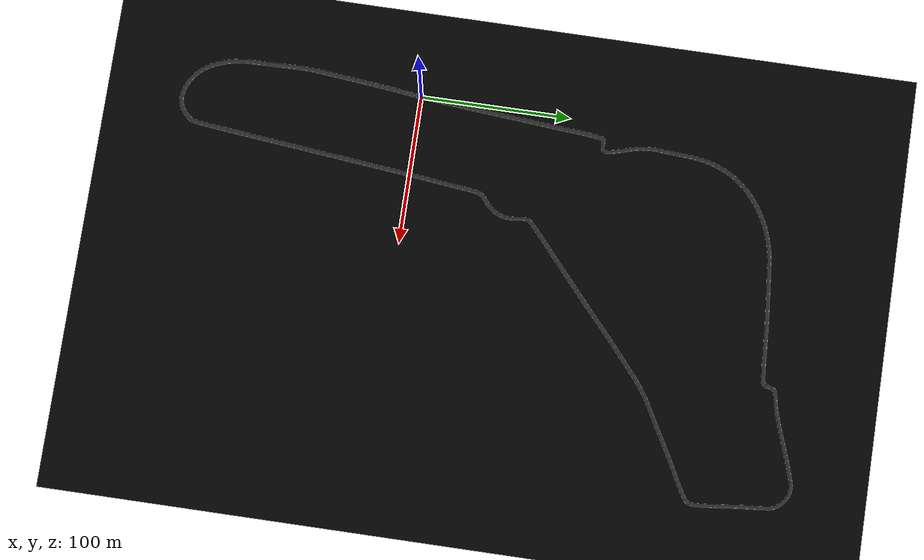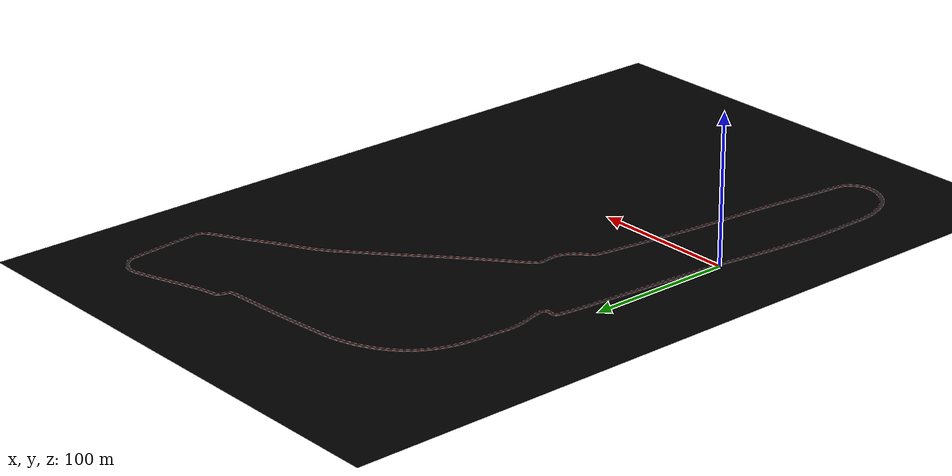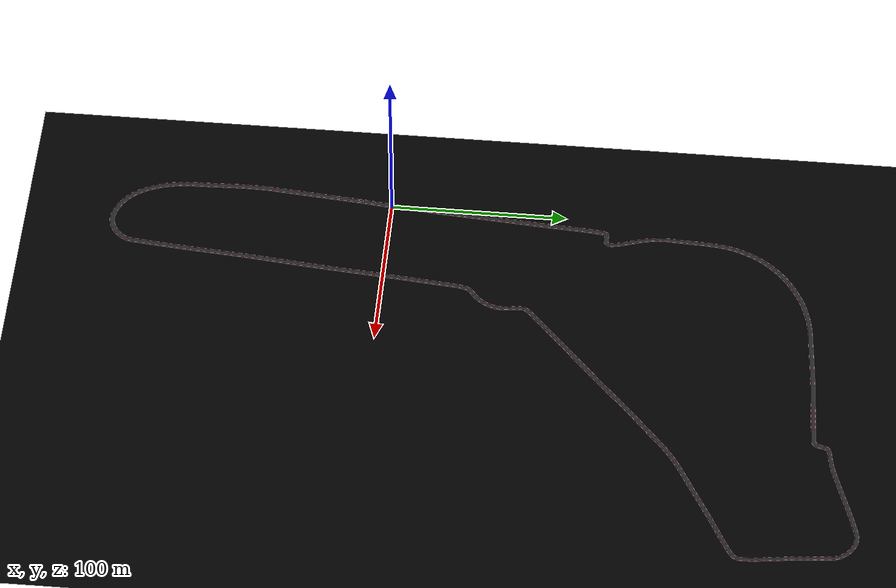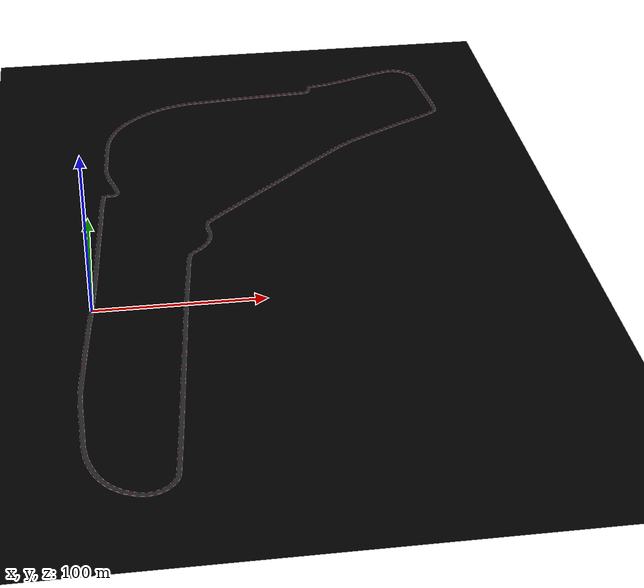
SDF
<?xml version='1.0' encoding='utf-8'?>
<sdf version="1.9">
  <world name="monza">
    <gravity>0 0 -9.81</gravity>
    <physics name="physics" type="ignored">
      <max_step_size>.001</max_step_size>
      <real_time_factor>1.0</real_time_factor>
    </physics>
    <plugin filename="gz-sim-physics-system" name="gz::sim::systems::Physics" />
    <plugin filename="gz-sim-user-commands-system" name="gz::sim::systems::UserCommands" />
    <plugin filename="gz-sim-scene-broadcaster-system" name="gz::sim::systems::SceneBroadcaster" />
    <plugin filename="gz-sim-sensors-system" name="gz::sim::systems::Sensors">
      <render_engine>ogre2</render_engine>
    </plugin>
    <scene>
      <ambient>0.65 0.65 0.65 1</ambient>
      <background>0 0 0 1</background>
      <grid>false</grid>
      <origin_visual>false</origin_visual>
      <shadows>true</shadows>
    </scene>
    <light name="sun" type="directional">
      <pose>0 0 100 0 0 0</pose>
      <visualize>false</visualize>
      <diffuse>0.85 0.85 0.85 1</diffuse>
      <specular>0.1 0.1 0.1 1</specular>
      <direction>-0.3 0.2 -1</direction>
      <cast_shadows>true</cast_shadows>
      <attenuation>
        <range>2000</range>
        <constant>1</constant>
        <linear>0</linear>
        <quadratic>0</quadratic>
      </attenuation>
    </light>
    <model name="race_start_gantry">
      <static>true</static>
      <pose>0.17135067 1.63906771 1.22070984 0 0 1.46663315</pose>
      <link name="gantry_visuals">
        <visual name="support_0">
          <pose>0 -1.40000 1.03 0 0 0</pose>
          <geometry>
            <box>
              <size>.10 .10 2.06</size>
            </box>
          </geometry>
          <material>
            <ambient>0.08 0.08 0.09 1</ambient>
            <diffuse>0.08 0.08 0.09 1</diffuse>
            <specular>0.02 0.02 0.02 1</specular>
          </material>
        </visual>
        <visual name="support_1">
          <pose>0 1.40000 1.03 0 0 0</pose>
          <geometry>
            <box>
              <size>.10 .10 2.06</size>
            </box>
          </geometry>
          <material>
            <ambient>0.08 0.08 0.09 1</ambient>
            <diffuse>0.08 0.08 0.09 1</diffuse>
            <specular>0.02 0.02 0.02 1</specular>
          </material>
        </visual>
        <visual name="crossbar">
          <pose>0 0 2.08 0 0 0</pose>
          <geometry>
            <box>
              <size>.12 2.80000 .12</size>
            </box>
          </geometry>
          <material>
            <ambient>0.06 0.06 0.07 1</ambient>
            <diffuse>0.06 0.06 0.07 1</diffuse>
            <specular>0.02 0.02 0.02 1</specular>
          </material>
        </visual>
        <visual name="lamp_housing">
          <pose>-0.09 0 1.96 0 -0.261799 0</pose>
          <geometry>
            <box>
              <size>.10 .88 .22</size>
            </box>
          </geometry>
          <material>
            <ambient>0.015 0.015 0.018 1</ambient>
            <diffuse>0.015 0.015 0.018 1</diffuse>
            <specular>0.02 0.02 0.02 1</specular>
          </material>
        </visual>
        <visual name="red_lens_1">
          <pose>-0.148 -0.3200 1.96 0 -0.261799 0</pose>
          <geometry>
            <box>
              <size>.025 .11 .12</size>
            </box>
          </geometry>
          <material>
            <ambient>0.12 0.006 0.008 1</ambient>
            <diffuse>0.12 0.006 0.008 1</diffuse>
            <specular>0.02 0.02 0.02 1</specular>
          </material>
        </visual>
        <visual name="red_lens_2">
          <pose>-0.148 -0.1600 1.96 0 -0.261799 0</pose>
          <geometry>
            <box>
              <size>.025 .11 .12</size>
            </box>
          </geometry>
          <material>
            <ambient>0.12 0.006 0.008 1</ambient>
            <diffuse>0.12 0.006 0.008 1</diffuse>
            <specular>0.02 0.02 0.02 1</specular>
          </material>
        </visual>
        <visual name="red_lens_3">
          <pose>-0.148 0.0000 1.96 0 -0.261799 0</pose>
          <geometry>
            <box>
              <size>.025 .11 .12</size>
            </box>
          </geometry>
          <material>
            <ambient>0.12 0.006 0.008 1</ambient>
            <diffuse>0.12 0.006 0.008 1</diffuse>
            <specular>0.02 0.02 0.02 1</specular>
          </material>
        </visual>
        <visual name="red_lens_4">
          <pose>-0.148 0.1600 1.96 0 -0.261799 0</pose>
          <geometry>
            <box>
              <size>.025 .11 .12</size>
            </box>
          </geometry>
          <material>
            <ambient>0.12 0.006 0.008 1</ambient>
            <diffuse>0.12 0.006 0.008 1</diffuse>
            <specular>0.02 0.02 0.02 1</specular>
          </material>
        </visual>
        <visual name="red_lens_5">
          <pose>-0.148 0.3200 1.96 0 -0.261799 0</pose>
          <geometry>
            <box>
              <size>.025 .11 .12</size>
            </box>
          </geometry>
          <material>
            <ambient>0.12 0.006 0.008 1</ambient>
            <diffuse>0.12 0.006 0.008 1</diffuse>
            <specular>0.02 0.02 0.02 1</specular>
          </material>
        </visual>
      </link>
    </model>
    <light name="race_red_1" type="point">
      <pose>0.47422795 1.45859790 3.18070984 0 0 0</pose>
      <diffuse>1 0.01 0.01 1</diffuse>
      <specular>1 0.02 0.02 1</specular>
      <intensity>0</intensity>
      <cast_shadows>false</cast_shadows>
      <attenuation>
        <range>8</range>
        <constant>1</constant>
        <linear>.15</linear>
        <quadratic>.01</quadratic>
      </attenuation>
    </light>
    <light name="race_red_2" type="point">
      <pose>0.31509517 1.47523389 3.18070984 0 0 0</pose>
      <diffuse>1 0.01 0.01 1</diffuse>
      <specular>1 0.02 0.02 1</specular>
      <intensity>0</intensity>
      <cast_shadows>false</cast_shadows>
      <attenuation>
        <range>8</range>
        <constant>1</constant>
        <linear>.15</linear>
        <quadratic>.01</quadratic>
      </attenuation>
    </light>
    <light name="race_red_3" type="point">
      <pose>0.15596238 1.49186988 3.18070984 0 0 0</pose>
      <diffuse>1 0.01 0.01 1</diffuse>
      <specular>1 0.02 0.02 1</specular>
      <intensity>0</intensity>
      <cast_shadows>false</cast_shadows>
      <attenuation>
        <range>8</range>
        <constant>1</constant>
        <linear>.15</linear>
        <quadratic>.01</quadratic>
      </attenuation>
    </light>
    <light name="race_red_4" type="point">
      <pose>-0.00317041 1.50850587 3.18070984 0 0 0</pose>
      <diffuse>1 0.01 0.01 1</diffuse>
      <specular>1 0.02 0.02 1</specular>
      <intensity>0</intensity>
      <cast_shadows>false</cast_shadows>
      <attenuation>
        <range>8</range>
        <constant>1</constant>
        <linear>.15</linear>
        <quadratic>.01</quadratic>
      </attenuation>
    </light>
    <light name="race_red_5" type="point">
      <pose>-0.16230319 1.52514185 3.18070984 0 0 0</pose>
      <diffuse>1 0.01 0.01 1</diffuse>
      <specular>1 0.02 0.02 1</specular>
      <intensity>0</intensity>
      <cast_shadows>false</cast_shadows>
      <attenuation>
        <range>8</range>
        <constant>1</constant>
        <linear>.15</linear>
        <quadratic>.01</quadratic>
      </attenuation>
    </light>
    <model name="ground">
      <static>true</static>
      <pose>0 0 -0.05 0 0 0</pose>
      <link name="ground">
        <collision name="ground_collision">
          <geometry>
            <plane>
              <normal>0 0 1</normal>
              <size>2000 2000</size>
            </plane>
          </geometry>
        </collision>
        <visual name="ground_visual">
          <geometry>
            <plane>
              <normal>0 0 1</normal>
              <size>2000 2000</size>
            </plane>
          </geometry>
          <material>
            <ambient>0 0 0 1</ambient>
            <diffuse>0 0 0 1</diffuse>
            <specular>0 0 0 1</specular>
          </material>
        </visual>
      </link>
    </model>
    <include>
      <uri>model://urrc_monza</uri>
      <name>urrc_monza</name>
    </include>
  </world>
</sdf>

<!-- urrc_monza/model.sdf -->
<sdf version="1.9">
  <model name="urrc_monza">
    <static>true</static>
    <link name="track">
      <collision name="road_collision">
        <geometry>
          <mesh>
            <uri>model://urrc_monza/meshes/road_collision.obj</uri>
          </mesh>
        </geometry>
        <surface>
          <friction>
            <ode>
              <mu>1.0</mu>
              <mu2>1.0</mu2>
            </ode>
          </friction>
        </surface>
      </collision>
      <collision name="wall_outer_collision">
        <geometry>
          <mesh>
            <uri>model://urrc_monza/meshes/wall_outer_collision.obj</uri>
          </mesh>
        </geometry>
        <surface>
          <friction>
            <ode>
              <mu>1.0</mu>
              <mu2>1.0</mu2>
            </ode>
          </friction>
        </surface>
      </collision>
      <collision name="wall_inner_collision">
        <geometry>
          <mesh>
            <uri>model://urrc_monza/meshes/wall_inner_collision.obj</uri>
          </mesh>
        </geometry>
        <surface>
          <friction>
            <ode>
              <mu>1.0</mu>
              <mu2>1.0</mu2>
            </ode>
          </friction>
        </surface>
      </collision>
      <visual name="road_visual">
        <cast_shadows>true</cast_shadows>
        <geometry>
          <mesh>
            <uri>model://urrc_monza/meshes/road.obj</uri>
          </mesh>
        </geometry>
        <material>
          <ambient>0.14 0.15 0.16 1</ambient>
          <diffuse>0.14 0.15 0.16 1</diffuse>
          <specular>0.02 0.02 0.02 1</specular>
        </material>
      </visual>
      <visual name="markings_visual">
        <cast_shadows>false</cast_shadows>
        <geometry>
          <mesh>
            <uri>model://urrc_monza/meshes/markings.obj</uri>
          </mesh>
        </geometry>
        <material>
          <ambient>0.96 0.96 0.94 1</ambient>
          <diffuse>0.96 0.96 0.94 1</diffuse>
          <specular>0.02 0.02 0.02 1</specular>
        </material>
      </visual>
      <visual name="wall_outer_red_visual">
        <cast_shadows>true</cast_shadows>
        <geometry>
          <mesh>
            <uri>model://urrc_monza/meshes/wall_outer_red.obj</uri>
          </mesh>
        </geometry>
        <material>
          <ambient>0.78 0.035 0.045 1</ambient>
          <diffuse>0.78 0.035 0.045 1</diffuse>
          <specular>0.02 0.02 0.02 1</specular>
        </material>
      </visual>
      <visual name="wall_inner_red_visual">
        <cast_shadows>true</cast_shadows>
        <geometry>
          <mesh>
            <uri>model://urrc_monza/meshes/wall_inner_red.obj</uri>
          </mesh>
        </geometry>
        <material>
          <ambient>0.78 0.035 0.045 1</ambient>
          <diffuse>0.78 0.035 0.045 1</diffuse>
          <specular>0.02 0.02 0.02 1</specular>
        </material>
      </visual>
      <visual name="wall_outer_white_visual">
        <cast_shadows>true</cast_shadows>
        <geometry>
          <mesh>
            <uri>model://urrc_monza/meshes/wall_outer_white.obj</uri>
          </mesh>
        </geometry>
        <material>
          <ambient>0.9 0.9 0.88 1</ambient>
          <diffuse>0.9 0.9 0.88 1</diffuse>
          <specular>0.02 0.02 0.02 1</specular>
        </material>
      </visual>
      <visual name="wall_inner_white_visual">
        <cast_shadows>true</cast_shadows>
        <geometry>
          <mesh>
            <uri>model://urrc_monza/meshes/wall_inner_white.obj</uri>
          </mesh>
        </geometry>
        <material>
          <ambient>0.9 0.9 0.88 1</ambient>
          <diffuse>0.9 0.9 0.88 1</diffuse>
          <specular>0.02 0.02 0.02 1</specular>
        </material>
      </visual>
    </link>
  </model>
</sdf>
